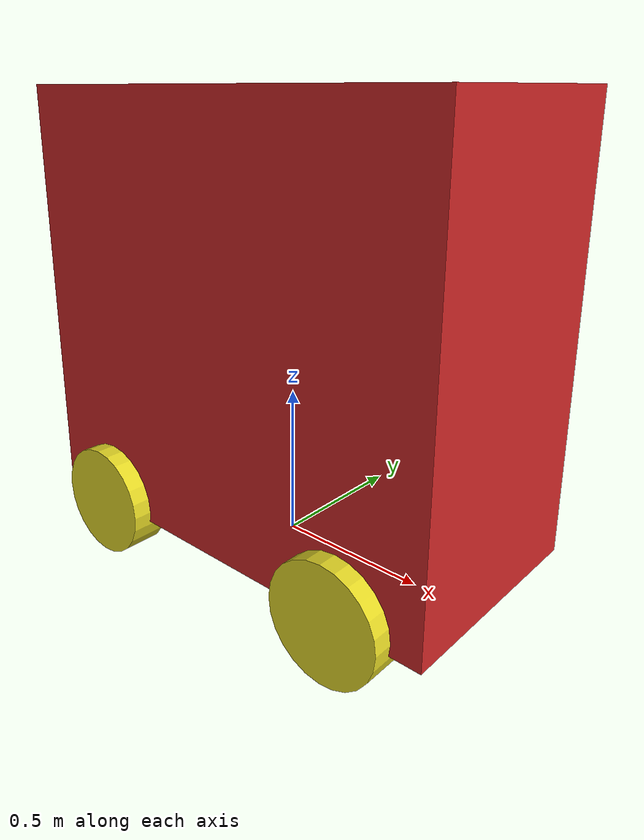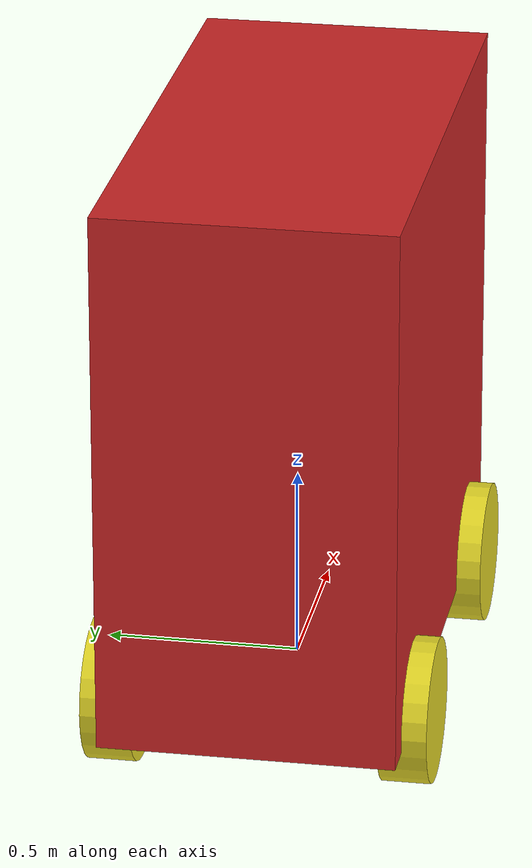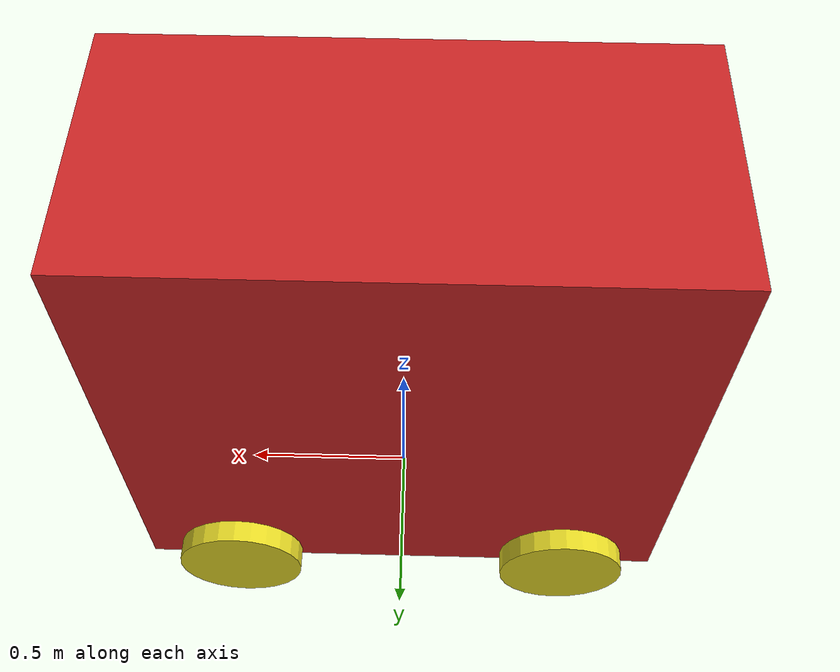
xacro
<?xml version="1.0"?>
<robot xmlns:xacro="http://www.ros.org/wiki/xacro" name="firefighter">

  <!-- my name is Mevi-->
  <!-- body dimensions -->
  <xacro:property name="body_length" value="1.540" />
  <xacro:property name="body_width" value="0.750" />
  <xacro:property name="body_height" value="1.4" />
  <xacro:property name="body_volume" value="${body_length*body_width*body_height}"/>
  <!-- wheel dimensions -->
  <xacro:property name="wheel_radius" value="0.185" />
  <xacro:property name="wheel_width" value="0.125" />
  <xacro:property name="wheel_volume" value="${pi_const*wheel_radius*wheel_radius*wheel_width}"/>

  <!-- variable -->

  <!-- aluminium density is 2.7 g/cm³ or 2700 kg/m3-->
  <xacro:property name="body_density" value="2700.0" />
  <!-- density of all tyre brands is nearly the same which is around 1.1 gr/cm3 or 1100 kg/m3 -->
  <xacro:property name="wheel_density" value="1100.0" />

  <!-- constant -->
  <xacro:property name="pi_const" value="3.14159265" />
  <xacro:property name="pi2_const" value="1.570795" />

  <!-- fixed transformation
       this value on rad. 1.570795 is a phi/2
  -->
  <xacro:property name="wheel_cylindrical_transform" value="1.570795" />

  <!-- mass -->
  <!-- let assume the mass of box same as half aluminium at it size-->
  <xacro:property name="body_mass" value="${body_density*body_volume*(1/2)}"/>
  <xacro:property name="wheel_mass" value="${wheel_density*wheel_volume}"/>

  <!-- moment inertia of wheel -->
  <xacro:property name="Iz_wheel" value="${0.5*wheel_mass*wheel_radius*wheel_radius}"/>
  <xacro:property name="I_wheel" value="${1/12*wheel_mass*(3*wheel_radius*wheel_radius + wheel_width*wheel_width)}"/>

  <!-- this is macro that we can call it anywhere on code
      it defines all inertia component on the wheel
  -->
  <xacro:macro name="inertia_of_wheel">
    <inertial>
      <origin rpy="0 0 0" xyz="0 0 0"/>
      <mass value="${wheel_mass}"/>
      <inertia
        ixx="${I_wheel}"
        ixy="0.0"
        ixz="0.0"
        iyy="${I_wheel}"
        iyz="0.0"
        izz="${Iz_wheel}"
      />
    </inertial>
  </xacro:macro>

  <!-- Include the gazebo file -->
  <xacro:include filename="$(find spawn_car)/urdf/mevi.gazebo"/>

  <!-- create a world joint and link in the simmulations -->
  <link name="dummy">
    <origin rpy="0 0 0" xyz="0 0 0"/>
  </link>

  <xacro:property name="gnd_clearance" value="0.06"/>
  <joint name="dummy_to_vehicle" type="fixed">
    <parent link="dummy"/>
    <child link="body_link"/>
    <origin rpy="0 0 0" xyz="0 0 ${gnd_clearance + (body_height/2)}"/>
    <axis xyz = "0 0 1"/>
  </joint>

  <!-- THIS IS A BODY LINK -->
  <link name="body_link">
    <visual>
        <origin rpy="0 0 0" xyz="0 0 0"/>

        <geometry>
            <box size="${body_length} ${body_width} ${body_height}"/>
        </geometry>

    </visual>

    <collision>
      <origin rpy="0 0 0" xyz="0 0 0"/>
      <geometry>
          <box size="1.540 0.750 1.63"/>
      </geometry>
    </collision>

    <inertial>
      <origin rpy="0 0 0" xyz="0 0 0"/>
      <mass value="${body_mass}"/>

      <!-- moment inertia of body -->
      <!-- let we assume the wheel is a full cuboid, so
        ixx = Il = 1/12*m (w2 + h2)
        iyy = Iw = 1/12*m (l2 + h2)
        izz = Ih = 1/12*m (l2 + w2)
      -->
      <inertia
        ixy="0.0"
        ixz="0.0"
        iyz="0.0"
        ixx = "${(1/12)*body_mass*(body_width*body_width + body_height*body_height)}"
        iyy = "${(1/12)*body_mass*(body_length*body_length + body_height*body_height)}"
        izz = "${(1/12)*body_mass*(body_length*body_length + body_width*body_width)}"
      />
    </inertial>
  </link>

  <!-- THIS IS A WHEEL JOINT -->

  <joint name="frontwheel_lw_joint" type="continuous">
      <parent link="body_link"/>
      <child link="frontwheel_lw_link"/>
      <origin xyz="-0.490 -0.375 -0.665" rpy="0 0 0 "/>
      <axis xyz="0 1 0"/>
      <!-- axis y rotation-->
      <limit effort="1000" velocity="1000"/>
      <dynamics damping="1.0" friction="1.0"/>
  </joint>

  <joint name="frontwheel_rw_joint" type="continuous">
    <parent link="body_link"/>
    <child link="frontwheel_rw_link"/>
    <origin xyz="-0.490 0.375 -0.665" rpy="0 0 0 "/>
    <axis xyz="0 1 0"/>
    <limit effort="1000" velocity="1000"/>
    <dynamics damping="1.0" friction="1.0"/>
    <!-- axis y rotation-->
  </joint>

  <joint name="rearwheel_lw_joint" type="continuous">
    <parent link="body_link"/>
    <child link="rearwheel_lw_link"/>
    <origin xyz="0.490 -0.375 -0.665" rpy="0 0 0 "/>
    <axis xyz="0 1 0"/>
    <!-- axis y rotation-->
    <limit effort="1000" velocity="1000"/>
    <dynamics damping="1.0" friction="1.0"/>
  </joint>

  <joint name="rearwheel_rw_joint" type="continuous">
    <parent link="body_link"/>
    <child link="rearwheel_rw_link"/>
    <origin xyz="0.490 0.375 -0.665" rpy="0 0 0 "/>
    <axis xyz="0 1 0"/>
    <!-- axis y rotation-->
    <limit effort="1000" velocity="1000"/>
    <dynamics damping="1.0" friction="1.0"/>
  </joint>

  <!-- THIS IS A WHEEL LINK -->
  <link name="frontwheel_lw_link">
      <visual>
          <origin rpy="${wheel_cylindrical_transform} 0 0" xyz="0 0 0"/>
          <!-- rotation on x as degree on radians (1.570795 is 90 degree in euler)-->
          <geometry>
            <cylinder length="${wheel_width}" radius="${wheel_radius}"/>
          </geometry>

      </visual>

      <collision>
        <origin rpy="${wheel_cylindrical_transform} 0 0" xyz="0 0 0"/>
        <!-- rotation on x as degree on radians (1.570795 is 90 degree in euler)-->
        <geometry>
          <cylinder length="${wheel_width}" radius="${wheel_radius}"/>
        </geometry>

      </collision>

      <xacro:inertia_of_wheel/>
  </link>
  <link name="frontwheel_rw_link">
    <visual>
        <origin rpy="${wheel_cylindrical_transform} 0 0" xyz="0 0 0"/>
        <!-- rotation on x as degree on radians (1.570795 is 90 degree in euler)-->
        <geometry>
          <cylinder length="${wheel_width}" radius="${wheel_radius}"/>
        </geometry>

    </visual>

    <collision>
      <origin rpy="${wheel_cylindrical_transform} 0 0" xyz="0 0 0"/>
      <!-- rotation on x as degree on radians (1.570795 is 90 degree in euler)-->
      <geometry>
        <cylinder length="${wheel_width}" radius="${wheel_radius}"/>
      </geometry>

    </collision>

    <xacro:inertia_of_wheel/>
  </link>
  <link name="rearwheel_lw_link">
    <visual>
        <origin rpy="${wheel_cylindrical_transform} 0 0" xyz="0 0 0"/>
        <!-- rotation on x as degree on radians (1.570795 is 90 degree in euler)-->
        <geometry>
          <cylinder length="${wheel_width}" radius="${wheel_radius}"/>
        </geometry>

    </visual>

    <collision>
      <origin rpy="${wheel_cylindrical_transform} 0 0" xyz="0 0 0"/>
      <!-- rotation on x as degree on radians (1.570795 is 90 degree in euler)-->
      <geometry>
        <cylinder length="${wheel_width}" radius="${wheel_radius}"/>
      </geometry>

    </collision>

    <xacro:inertia_of_wheel/>
  </link>
  <link name="rearwheel_rw_link">
    <visual>
        <origin rpy="${wheel_cylindrical_transform} 0 0" xyz="0 0 0"/>
        <!-- rotation on x as degree on radians (1.570795 is 90 degree in euler)-->
        <geometry>
          <cylinder length="${wheel_width}" radius="${wheel_radius}"/>
        </geometry>

    </visual>

    <collision>
      <origin rpy="${wheel_cylindrical_transform} 0 0" xyz="0 0 0"/>
      <!-- rotation on x as degree on radians (1.570795 is 90 degree in euler)-->
      <geometry>
        <cylinder length="${wheel_width}" radius="${wheel_radius}"/>
      </geometry>

    </collision>

    <xacro:inertia_of_wheel/>
  </link>

</robot>
